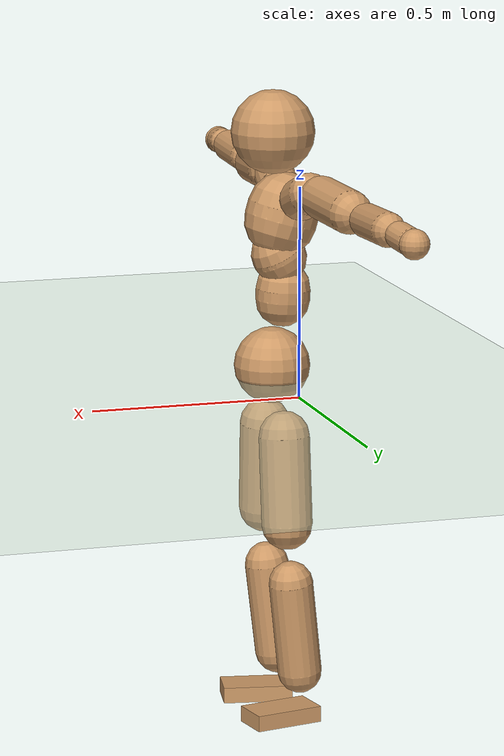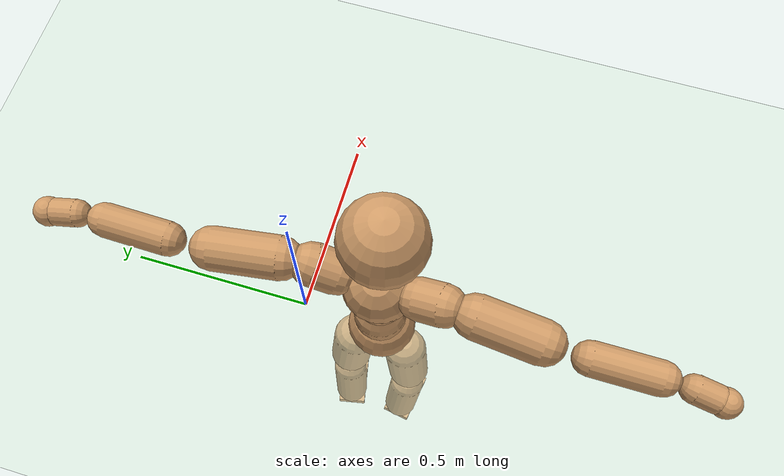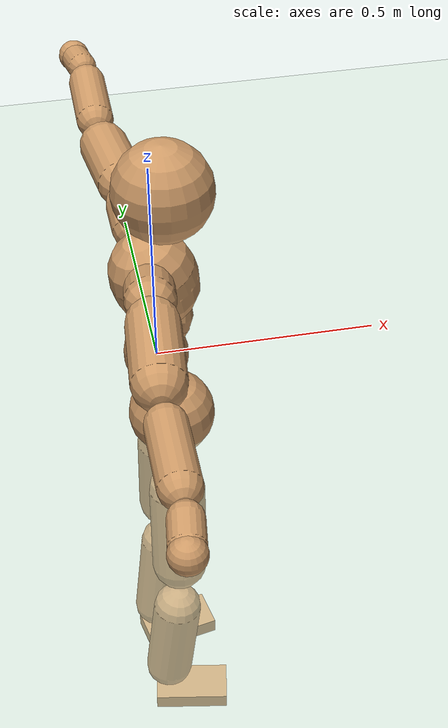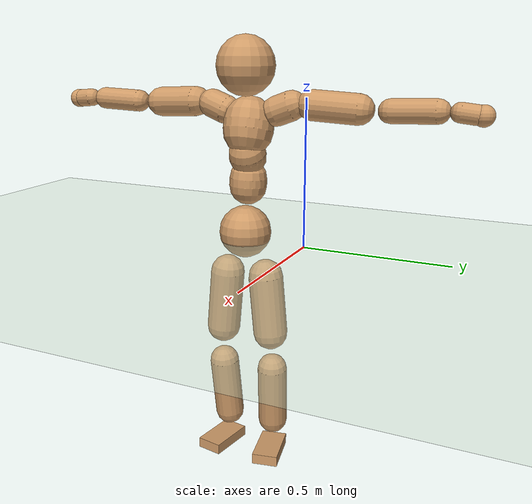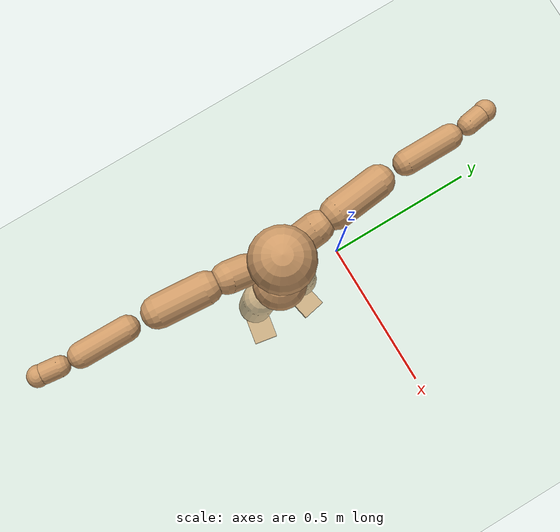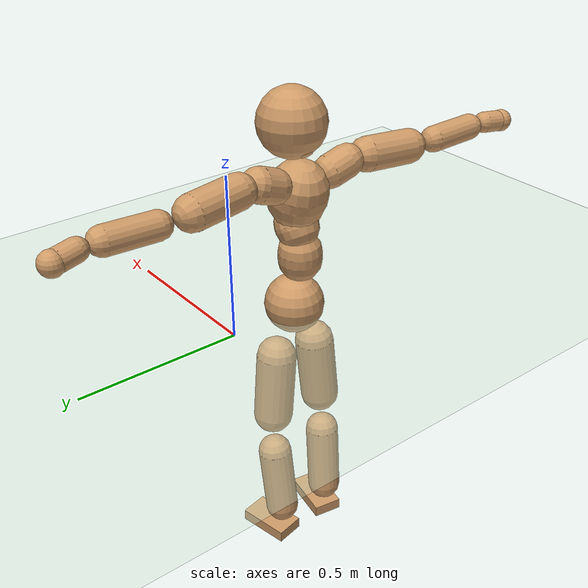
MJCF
<mujoco model="humanoid">
  <compiler coordinate="local"/>
  <default>
    <joint damping="0.0" armature="0.01" stiffness="0.0" limited="true"/>
    <geom conaffinity="1" condim="3" contype="7" margin="0.001" rgba="0.8 0.6 .4 1"/>
  </default>
  <asset>
    <texture type="skybox" builtin="gradient" rgb1=".4 .5 .6" rgb2="0 0 0" width="100" height="100"/>
    <texture builtin="flat" height="1278" mark="cross" markrgb="1 1 1" name="texgeom" random="0.01" rgb1="0.8 0.6 0.4" rgb2="0.8 0.6 0.4" type="cube" width="127"/>
    <texture builtin="checker" height="100" name="texplane" rgb1="0 0 0" rgb2="0.8 0.8 0.8" type="2d" width="100"/>
    <material name="MatPlane" reflectance="0.5" shininess="1" specular="1" texrepeat="60 60" texture="texplane"/>
    <material name="geom" texture="texgeom" texuniform="true"/>
  </asset>
  <worldbody>
    <light cutoff="100" diffuse="1 1 1" dir="-0 0 -1.3" directional="true" exponent="1" pos="0 0 1.3" specular=".1 .1 .1"/>
    <geom conaffinity="1" condim="3" name="floor" pos="0 0 0" rgba="0.8 0.9 0.8 1" size="100 100 .2" type="plane" material="MatPlane"/>
    <body name="Pelvis" pos="-0.0017 -0.2229 0.0309">
      <freejoint name="Pelvis"/>
      <geom type="sphere" contype="1" conaffinity="1" density="500" size="0.0919" pos="0.0000 0.0000 0.0000" name="Pelvis"/>
      <body name="L_Hip" pos="-0.0067 0.0701 -0.0887">
        <joint name="L_Hip_x" type="hinge" pos="0 0 0" axis="1 0 0" stiffness="800" damping="80" armature="0.02" range="-180.0000 180.0000"/>
        <joint name="L_Hip_y" type="hinge" pos="0 0 0" axis="0 1 0" stiffness="800" damping="80" armature="0.02" range="-180.0000 180.0000"/>
        <joint name="L_Hip_z" type="hinge" pos="0 0 0" axis="0 0 1" stiffness="800" damping="80" armature="0.02" range="-180.0000 180.0000"/>
        <geom type="capsule" contype="1" conaffinity="1" density="500" fromto="-0.0007 0.0063 -0.0715 -0.0028 0.0251 -0.2859" size="0.0617" name="L_Hip"/>
        <body name="L_Knee" pos="-0.0035 0.0314 -0.3574">
          <joint name="L_Knee_x" type="hinge" pos="0 0 0" axis="1 0 0" stiffness="800" damping="80" armature="0.02" range="-180.0000 180.0000"/>
          <joint name="L_Knee_y" type="hinge" pos="0 0 0" axis="0 1 0" stiffness="800" damping="80" armature="0.02" range="-180.0000 180.0000"/>
          <joint name="L_Knee_z" type="hinge" pos="0 0 0" axis="0 0 1" stiffness="800" damping="80" armature="0.02" range="-180.0000 180.0000"/>
          <geom type="capsule" contype="1" conaffinity="1" density="500" fromto="-0.0084 -0.0024 -0.0754 -0.0338 -0.0095 -0.3017" size="0.0538" name="L_Knee"/>
          <body name="L_Ankle" pos="-0.0422 -0.0118 -0.3771">
            <joint name="L_Ankle_x" type="hinge" pos="0 0 0" axis="1 0 0" stiffness="800" damping="80" armature="0.02" range="-180.0000 180.0000"/>
            <joint name="L_Ankle_y" type="hinge" pos="0 0 0" axis="0 1 0" stiffness="800" damping="80" armature="0.02" range="-180.0000 180.0000"/>
            <joint name="L_Ankle_z" type="hinge" pos="0 0 0" axis="0 0 1" stiffness="800" damping="80" armature="0.02" range="-180.0000 180.0000"/>
            <geom type="box" contype="1" conaffinity="1" density="500" pos="0.0587 0.0116 -0.0274" size="0.0852 0.0467 0.0196" quat="0.9953 0.0000 0.0000 0.0971" name="L_Ankle"/>
            <body name="L_Toe" pos="0.1174 0.0231 -0.0547">
              <joint name="L_Toe_x" type="hinge" pos="0 0 0" axis="1 0 0" stiffness="500" damping="50" armature="0.02" range="-180.0000 180.0000"/>
              <joint name="L_Toe_y" type="hinge" pos="0 0 0" axis="0 1 0" stiffness="500" damping="50" armature="0.02" range="-180.0000 180.0000"/>
              <joint name="L_Toe_z" type="hinge" pos="0 0 0" axis="0 0 1" stiffness="500" damping="50" armature="0.02" range="-180.0000 180.0000"/>
              <geom type="box" contype="1" conaffinity="1" density="500" pos="0.0000 0.0000 0.0274" size="0.001 0.0023 0.001" quat="0.9946 0.0000 0.0000 0.1035" name="L_Toe"/>
            </body>
          </body>
        </body>
      </body>
      <body name="R_Hip" pos="-0.0042 -0.0674 -0.0877">
        <joint name="R_Hip_x" type="hinge" pos="0 0 0" axis="1 0 0" stiffness="800" damping="80" armature="0.02" range="-180.0000 180.0000"/>
        <joint name="R_Hip_y" type="hinge" pos="0 0 0" axis="0 1 0" stiffness="800" damping="80" armature="0.02" range="-180.0000 180.0000"/>
        <joint name="R_Hip_z" type="hinge" pos="0 0 0" axis="0 0 1" stiffness="800" damping="80" armature="0.02" range="-180.0000 180.0000"/>
        <geom type="capsule" contype="1" conaffinity="1" density="500" fromto="-0.0013 -0.0072 -0.0728 -0.0052 -0.0290 -0.2913" size="0.0611" name="R_Hip"/>
        <body name="R_Knee" pos="-0.0065 -0.0362 -0.3642">
          <joint name="R_Knee_x" type="hinge" pos="0 0 0" axis="1 0 0" stiffness="800" damping="80" armature="0.02" range="-180.0000 180.0000"/>
          <joint name="R_Knee_y" type="hinge" pos="0 0 0" axis="0 1 0" stiffness="800" damping="80" armature="0.02" range="-180.0000 180.0000"/>
          <joint name="R_Knee_z" type="hinge" pos="0 0 0" axis="0 0 1" stiffness="800" damping="80" armature="0.02" range="-180.0000 180.0000"/>
          <geom type="capsule" contype="1" conaffinity="1" density="500" fromto="-0.0083 0.0027 -0.0752 -0.0331 0.0107 -0.3008" size="0.0541" name="R_Knee"/>
          <body name="R_Ankle" pos="-0.0413 0.0134 -0.376">
            <joint name="R_Ankle_x" type="hinge" pos="0 0 0" axis="1 0 0" stiffness="800" damping="80" armature="0.02" range="-180.0000 180.0000"/>
            <joint name="R_Ankle_y" type="hinge" pos="0 0 0" axis="0 1 0" stiffness="800" damping="80" armature="0.02" range="-180.0000 180.0000"/>
            <joint name="R_Ankle_z" type="hinge" pos="0 0 0" axis="0 0 1" stiffness="800" damping="80" armature="0.02" range="-180.0000 180.0000"/>
            <geom type="box" contype="1" conaffinity="1" density="500" pos="0.0604 -0.0106 -0.0226" size="0.0852 0.047 0.0194" quat="0.9962 0.0000 0.0000 -0.0870" name="R_Ankle"/>
            <body name="R_Toe" pos="0.1207 -0.0212 -0.0451">
              <joint name="R_Toe_x" type="hinge" pos="0 0 0" axis="1 0 0" stiffness="500" damping="50" armature="0.02" range="-180.0000 180.0000"/>
              <joint name="R_Toe_y" type="hinge" pos="0 0 0" axis="0 1 0" stiffness="500" damping="50" armature="0.02" range="-180.0000 180.0000"/>
              <joint name="R_Toe_z" type="hinge" pos="0 0 0" axis="0 0 1" stiffness="500" damping="50" armature="0.02" range="-180.0000 180.0000"/>
              <geom type="box" contype="1" conaffinity="1" density="500" pos="0.0000 0.0000 0.0255" size="0.0009 0.0023 0.0011" quat="0.9970 0.0000 0.0000 -0.0777" name="R_Toe"/>
            </body>
          </body>
        </body>
      </body>
      <body name="Torso" pos="-0.0248 -0.0037 0.104">
        <joint name="Torso_x" type="hinge" pos="0 0 0" axis="1 0 0" stiffness="1000" damping="100" armature="0.02" range="-180.0000 180.0000"/>
        <joint name="Torso_y" type="hinge" pos="0 0 0" axis="0 1 0" stiffness="1000" damping="100" armature="0.02" range="-180.0000 180.0000"/>
        <joint name="Torso_z" type="hinge" pos="0 0 0" axis="0 0 1" stiffness="1000" damping="100" armature="0.02" range="-180.0000 180.0000"/>
        <geom type="capsule" contype="1" conaffinity="1" density="500" fromto="-0.0029 0.0029 0.0824 -0.0020 0.0019 0.0549" size="0.065937" name="Torso"/>
        <body name="Spine" pos="-0.0049 0.0048 0.1373">
          <joint name="Spine_x" type="hinge" pos="0 0 0" axis="1 0 0" stiffness="1000" damping="100" armature="0.02" range="-180.0000 180.0000"/>
          <joint name="Spine_y" type="hinge" pos="0 0 0" axis="0 1 0" stiffness="1000" damping="100" armature="0.02" range="-180.0000 180.0000"/>
          <joint name="Spine_z" type="hinge" pos="0 0 0" axis="0 0 1" stiffness="1000" damping="100" armature="0.02" range="-180.0000 180.0000"/>
          <geom type="capsule" contype="1" conaffinity="1" density="500" fromto="0.0163 0.0014 0.0304 0.0109 0.0009 0.0202" size="0.0651" name="Spine"/>
          <body name="Chest" pos="0.0272 0.0023 0.0506">
            <joint name="Chest_x" type="hinge" pos="0 0 0" axis="1 0 0" stiffness="1000" damping="100" armature="0.02" range="-180.0000 180.0000"/>
            <joint name="Chest_y" type="hinge" pos="0 0 0" axis="0 1 0" stiffness="1000" damping="100" armature="0.02" range="-180.0000 180.0000"/>
            <joint name="Chest_z" type="hinge" pos="0 0 0" axis="0 0 1" stiffness="1000" damping="100" armature="0.02" range="-180.0000 180.0000"/>
            <geom type="capsule" contype="1" conaffinity="1" density="500" fromto="-0.0251 -0.0006 0.0895 -0.0167 -0.0004 0.0597" size="0.087234" name="Chest"/>
            <body name="Neck" pos="-0.0474 -0.002 0.2116">
              <joint name="Neck_x" type="hinge" pos="0 0 0" axis="1 0 0" stiffness="500" damping="50" armature="0.02" range="-180.0000 180.0000"/>
              <joint name="Neck_y" type="hinge" pos="0 0 0" axis="0 1 0" stiffness="500" damping="50" armature="0.02" range="-180.0000 180.0000"/>
              <joint name="Neck_z" type="hinge" pos="0 0 0" axis="0 0 1" stiffness="500" damping="50" armature="0.02" range="-180.0000 180.0000"/>
              <geom type="capsule" contype="1" conaffinity="1" density="500" fromto="0.0100 0.0006 0.0127 0.0402 0.0024 0.0507" size="0.038874" name="Neck"/>
              <body name="Head" pos="0.0502 0.0029 0.0633">
                <joint name="Head_x" type="hinge" pos="0 0 0" axis="1 0 0" stiffness="500" damping="50" armature="0.02" range="-180.0000 180.0000"/>
                <joint name="Head_y" type="hinge" pos="0 0 0" axis="0 1 0" stiffness="500" damping="50" armature="0.02" range="-180.0000 180.0000"/>
                <joint name="Head_z" type="hinge" pos="0 0 0" axis="0 0 1" stiffness="500" damping="50" armature="0.02" range="-180.0000 180.0000"/>
                <geom type="sphere" contype="1" conaffinity="1" density="500" size="0.1004" pos="0.0000 0.0000 0.0000" name="Head"/>
              </body>
            </body>
            <body name="L_Thorax" pos="-0.0363 0.0764 0.1194">
              <joint name="L_Thorax_x" type="hinge" pos="0 0 0" axis="1 0 0" stiffness="500" damping="50" armature="0.02" range="-180.0000 180.0000"/>
              <joint name="L_Thorax_y" type="hinge" pos="0 0 0" axis="0 1 0" stiffness="500" damping="50" armature="0.02" range="-180.0000 180.0000"/>
              <joint name="L_Thorax_z" type="hinge" pos="0 0 0" axis="0 0 1" stiffness="500" damping="50" armature="0.02" range="-180.0000 180.0000"/>
              <geom type="capsule" contype="1" conaffinity="1" density="500" fromto="-0.0013 0.0181 0.0068 -0.0051 0.0723 0.0273" size="0.0511" name="L_Thorax"/>
              <body name="L_Shoulder" pos="-0.0063 0.0904 0.0341">
                <joint name="L_Shoulder_x" type="hinge" pos="0 0 0" axis="1 0 0" stiffness="500" damping="50" armature="0.02" range="-720.0000 720.0000"/>
                <joint name="L_Shoulder_y" type="hinge" pos="0 0 0" axis="0 1 0" stiffness="500" damping="50" armature="0.02" range="-720.0000 720.0000"/>
                <joint name="L_Shoulder_z" type="hinge" pos="0 0 0" axis="0 0 1" stiffness="500" damping="50" armature="0.02" range="-720.0000 720.0000"/>
                <geom type="capsule" contype="1" conaffinity="1" density="500" fromto="-0.0060 0.0516 -0.0031 -0.0241 0.2065 -0.0124" size="0.0512" name="L_Shoulder"/>
                <body name="L_Elbow" pos="-0.0301 0.2581 -0.0155">
                  <joint name="L_Elbow_x" type="hinge" pos="0 0 0" axis="1 0 0" stiffness="500" damping="50" armature="0.02" range="-720.0000 720.0000"/>
                  <joint name="L_Elbow_y" type="hinge" pos="0 0 0" axis="0 1 0" stiffness="500" damping="50" armature="0.02" range="-720.0000 720.0000"/>
                  <joint name="L_Elbow_z" type="hinge" pos="0 0 0" axis="0 0 1" stiffness="500" damping="50" armature="0.02" range="-720.0000 720.0000"/>
                  <geom type="capsule" contype="1" conaffinity="1" density="500" fromto="0.0003 0.0500 0.0018 0.0011 0.2000 0.0070" size="0.0399" name="L_Elbow"/>
                  <body name="L_Wrist" pos="0.0014 0.25 0.0088">
                    <joint name="L_Wrist_x" type="hinge" pos="0 0 0" axis="1 0 0" stiffness="300" damping="30" armature="0.02" range="-180.0000 180.0000"/>
                    <joint name="L_Wrist_y" type="hinge" pos="0 0 0" axis="0 1 0" stiffness="300" damping="30" armature="0.02" range="-180.0000 180.0000"/>
                    <joint name="L_Wrist_z" type="hinge" pos="0 0 0" axis="0 0 1" stiffness="300" damping="30" armature="0.02" range="-180.0000 180.0000"/>
                    <geom type="capsule" contype="1" conaffinity="1" density="500" fromto="-0.0028 0.0171 -0.0021 -0.0113 0.0683 -0.0084" size="0.032" name="L_Wrist"/>
                    <body name="L_Hand" pos="-0.0141 0.0854 -0.0105">
                      <joint name="L_Hand_x" type="hinge" pos="0 0 0" axis="1 0 0" stiffness="300" damping="30" armature="0.02" range="-180.0000 180.0000"/>
                      <joint name="L_Hand_y" type="hinge" pos="0 0 0" axis="0 1 0" stiffness="300" damping="30" armature="0.02" range="-180.0000 180.0000"/>
                      <joint name="L_Hand_z" type="hinge" pos="0 0 0" axis="0 0 1" stiffness="300" damping="30" armature="0.02" range="-180.0000 180.0000"/>
                      <geom type="sphere" contype="1" conaffinity="1" density="500" size="0.0344" pos="0.0000 0.0000 0.0000" name="L_Hand"/>
                    </body>
                  </body>
                </body>
              </body>
            </body>
            <body name="R_Thorax" pos="-0.0416 -0.0776 0.1164">
              <joint name="R_Thorax_x" type="hinge" pos="0 0 0" axis="1 0 0" stiffness="500" damping="50" armature="0.02" range="-180.0000 180.0000"/>
              <joint name="R_Thorax_y" type="hinge" pos="0 0 0" axis="0 1 0" stiffness="500" damping="50" armature="0.02" range="-180.0000 180.0000"/>
              <joint name="R_Thorax_z" type="hinge" pos="0 0 0" axis="0 0 1" stiffness="500" damping="50" armature="0.02" range="-180.0000 180.0000"/>
              <geom type="capsule" contype="1" conaffinity="1" density="500" fromto="-0.0020 -0.0190 0.0066 -0.0080 -0.0760 0.0263" size="0.0498" name="R_Thorax"/>
              <body name="R_Shoulder" pos="-0.01 -0.095 0.0329">
                <joint name="R_Shoulder_x" type="hinge" pos="0 0 0" axis="1 0 0" stiffness="500" damping="50" armature="0.02" range="-720.0000 720.0000"/>
                <joint name="R_Shoulder_y" type="hinge" pos="0 0 0" axis="0 1 0" stiffness="500" damping="50" armature="0.02" range="-720.0000 720.0000"/>
                <joint name="R_Shoulder_z" type="hinge" pos="0 0 0" axis="0 0 1" stiffness="500" damping="50" armature="0.02" range="-720.0000 720.0000"/>
                <geom type="capsule" contype="1" conaffinity="1" density="500" fromto="-0.0042 -0.0507 -0.0027 -0.0168 -0.2029 -0.0108" size="0.052" name="R_Shoulder"/>
                <body name="R_Elbow" pos="-0.0209 -0.2536 -0.0135">
                  <joint name="R_Elbow_x" type="hinge" pos="0 0 0" axis="1 0 0" stiffness="500" damping="50" armature="0.02" range="-720.0000 720.0000"/>
                  <joint name="R_Elbow_y" type="hinge" pos="0 0 0" axis="0 1 0" stiffness="500" damping="50" armature="0.02" range="-720.0000 720.0000"/>
                  <joint name="R_Elbow_z" type="hinge" pos="0 0 0" axis="0 0 1" stiffness="500" damping="50" armature="0.02" range="-720.0000 720.0000"/>
                  <geom type="capsule" contype="1" conaffinity="1" density="500" fromto="-0.0005 -0.0507 0.0016 -0.0018 -0.2027 0.0063" size="0.0396" name="R_Elbow"/>
                  <body name="R_Wrist" pos="-0.0023 -0.2534 0.0078">
                    <joint name="R_Wrist_x" type="hinge" pos="0 0 0" axis="1 0 0" stiffness="300" damping="30" armature="0.02" range="-180.0000 180.0000"/>
                    <joint name="R_Wrist_y" type="hinge" pos="0 0 0" axis="0 1 0" stiffness="300" damping="30" armature="0.02" range="-180.0000 180.0000"/>
                    <joint name="R_Wrist_z" type="hinge" pos="0 0 0" axis="0 0 1" stiffness="300" damping="30" armature="0.02" range="-180.0000 180.0000"/>
                    <geom type="capsule" contype="1" conaffinity="1" density="500" fromto="-0.0022 -0.0170 -0.0015 -0.0088 -0.0682 -0.0061" size="0.0324" name="R_Wrist"/>
                    <body name="R_Hand" pos="-0.011 -0.0852 -0.0077">
                      <joint name="R_Hand_x" type="hinge" pos="0 0 0" axis="1 0 0" stiffness="300" damping="30" armature="0.02" range="-180.0000 180.0000"/>
                      <joint name="R_Hand_y" type="hinge" pos="0 0 0" axis="0 1 0" stiffness="300" damping="30" armature="0.02" range="-180.0000 180.0000"/>
                      <joint name="R_Hand_z" type="hinge" pos="0 0 0" axis="0 0 1" stiffness="300" damping="30" armature="0.02" range="-180.0000 180.0000"/>
                      <geom type="sphere" contype="1" conaffinity="1" density="500" size="0.0341" pos="0.0000 0.0000 0.0000" name="R_Hand"/>
                    </body>
                  </body>
                </body>
              </body>
            </body>
          </body>
        </body>
      </body>
    </body>
  </worldbody>
  <actuator>
    <motor name="L_Hip_x" joint="L_Hip_x" gear="500"/>
    <motor name="L_Hip_y" joint="L_Hip_y" gear="500"/>
    <motor name="L_Hip_z" joint="L_Hip_z" gear="500"/>
    <motor name="L_Knee_x" joint="L_Knee_x" gear="500"/>
    <motor name="L_Knee_y" joint="L_Knee_y" gear="500"/>
    <motor name="L_Knee_z" joint="L_Knee_z" gear="500"/>
    <motor name="L_Ankle_x" joint="L_Ankle_x" gear="500"/>
    <motor name="L_Ankle_y" joint="L_Ankle_y" gear="500"/>
    <motor name="L_Ankle_z" joint="L_Ankle_z" gear="500"/>
    <motor name="L_Toe_x" joint="L_Toe_x" gear="500"/>
    <motor name="L_Toe_y" joint="L_Toe_y" gear="500"/>
    <motor name="L_Toe_z" joint="L_Toe_z" gear="500"/>
    <motor name="R_Hip_x" joint="R_Hip_x" gear="500"/>
    <motor name="R_Hip_y" joint="R_Hip_y" gear="500"/>
    <motor name="R_Hip_z" joint="R_Hip_z" gear="500"/>
    <motor name="R_Knee_x" joint="R_Knee_x" gear="500"/>
    <motor name="R_Knee_y" joint="R_Knee_y" gear="500"/>
    <motor name="R_Knee_z" joint="R_Knee_z" gear="500"/>
    <motor name="R_Ankle_x" joint="R_Ankle_x" gear="500"/>
    <motor name="R_Ankle_y" joint="R_Ankle_y" gear="500"/>
    <motor name="R_Ankle_z" joint="R_Ankle_z" gear="500"/>
    <motor name="R_Toe_x" joint="R_Toe_x" gear="500"/>
    <motor name="R_Toe_y" joint="R_Toe_y" gear="500"/>
    <motor name="R_Toe_z" joint="R_Toe_z" gear="500"/>
    <motor name="Torso_x" joint="Torso_x" gear="500"/>
    <motor name="Torso_y" joint="Torso_y" gear="500"/>
    <motor name="Torso_z" joint="Torso_z" gear="500"/>
    <motor name="Spine_x" joint="Spine_x" gear="500"/>
    <motor name="Spine_y" joint="Spine_y" gear="500"/>
    <motor name="Spine_z" joint="Spine_z" gear="500"/>
    <motor name="Chest_x" joint="Chest_x" gear="500"/>
    <motor name="Chest_y" joint="Chest_y" gear="500"/>
    <motor name="Chest_z" joint="Chest_z" gear="500"/>
    <motor name="Neck_x" joint="Neck_x" gear="500"/>
    <motor name="Neck_y" joint="Neck_y" gear="500"/>
    <motor name="Neck_z" joint="Neck_z" gear="500"/>
    <motor name="Head_x" joint="Head_x" gear="500"/>
    <motor name="Head_y" joint="Head_y" gear="500"/>
    <motor name="Head_z" joint="Head_z" gear="500"/>
    <motor name="L_Thorax_x" joint="L_Thorax_x" gear="500"/>
    <motor name="L_Thorax_y" joint="L_Thorax_y" gear="500"/>
    <motor name="L_Thorax_z" joint="L_Thorax_z" gear="500"/>
    <motor name="L_Shoulder_x" joint="L_Shoulder_x" gear="500"/>
    <motor name="L_Shoulder_y" joint="L_Shoulder_y" gear="500"/>
    <motor name="L_Shoulder_z" joint="L_Shoulder_z" gear="500"/>
    <motor name="L_Elbow_x" joint="L_Elbow_x" gear="500"/>
    <motor name="L_Elbow_y" joint="L_Elbow_y" gear="500"/>
    <motor name="L_Elbow_z" joint="L_Elbow_z" gear="500"/>
    <motor name="L_Wrist_x" joint="L_Wrist_x" gear="500"/>
    <motor name="L_Wrist_y" joint="L_Wrist_y" gear="500"/>
    <motor name="L_Wrist_z" joint="L_Wrist_z" gear="500"/>
    <motor name="L_Hand_x" joint="L_Hand_x" gear="500"/>
    <motor name="L_Hand_y" joint="L_Hand_y" gear="500"/>
    <motor name="L_Hand_z" joint="L_Hand_z" gear="500"/>
    <motor name="R_Thorax_x" joint="R_Thorax_x" gear="500"/>
    <motor name="R_Thorax_y" joint="R_Thorax_y" gear="500"/>
    <motor name="R_Thorax_z" joint="R_Thorax_z" gear="500"/>
    <motor name="R_Shoulder_x" joint="R_Shoulder_x" gear="500"/>
    <motor name="R_Shoulder_y" joint="R_Shoulder_y" gear="500"/>
    <motor name="R_Shoulder_z" joint="R_Shoulder_z" gear="500"/>
    <motor name="R_Elbow_x" joint="R_Elbow_x" gear="500"/>
    <motor name="R_Elbow_y" joint="R_Elbow_y" gear="500"/>
    <motor name="R_Elbow_z" joint="R_Elbow_z" gear="500"/>
    <motor name="R_Wrist_x" joint="R_Wrist_x" gear="500"/>
    <motor name="R_Wrist_y" joint="R_Wrist_y" gear="500"/>
    <motor name="R_Wrist_z" joint="R_Wrist_z" gear="500"/>
    <motor name="R_Hand_x" joint="R_Hand_x" gear="500"/>
    <motor name="R_Hand_y" joint="R_Hand_y" gear="500"/>
    <motor name="R_Hand_z" joint="R_Hand_z" gear="500"/>
  </actuator>
  <contact>
    <exclude body1="Torso" body2="Chest"/>
    <exclude body1="Head" body2="Chest"/>
    <exclude body1="R_Knee" body2="R_Toe"/>
    <exclude body1="R_Knee" body2="L_Ankle"/>
    <exclude body1="R_Knee" body2="L_Toe"/>
    <exclude body1="L_Knee" body2="L_Toe"/>
    <exclude body1="L_Knee" body2="R_Ankle"/>
    <exclude body1="L_Knee" body2="R_Toe"/>
    <exclude body1="L_Shoulder" body2="Chest"/>
    <exclude body1="R_Shoulder" body2="Chest"/>
  </contact>
  <sensor/>
  <size njmax="700" nconmax="700"/>
</mujoco>
